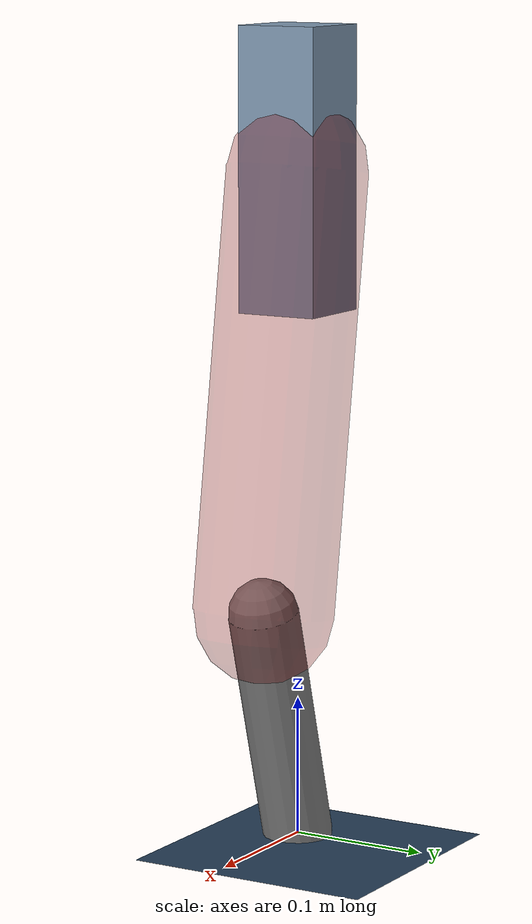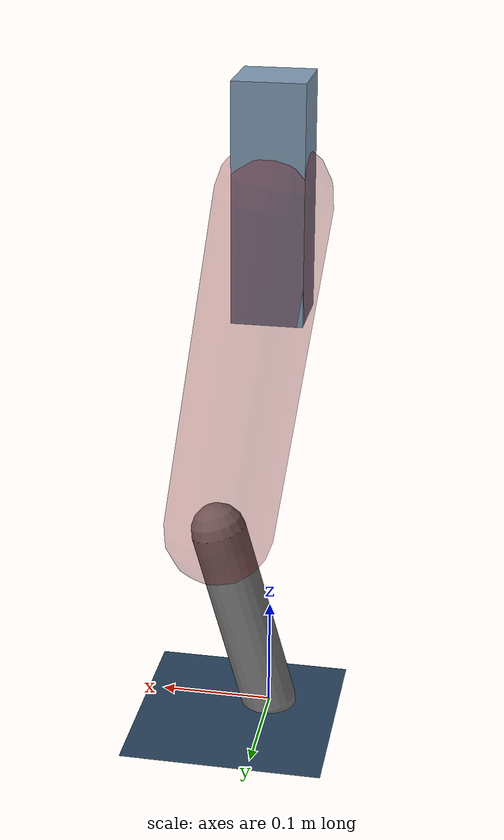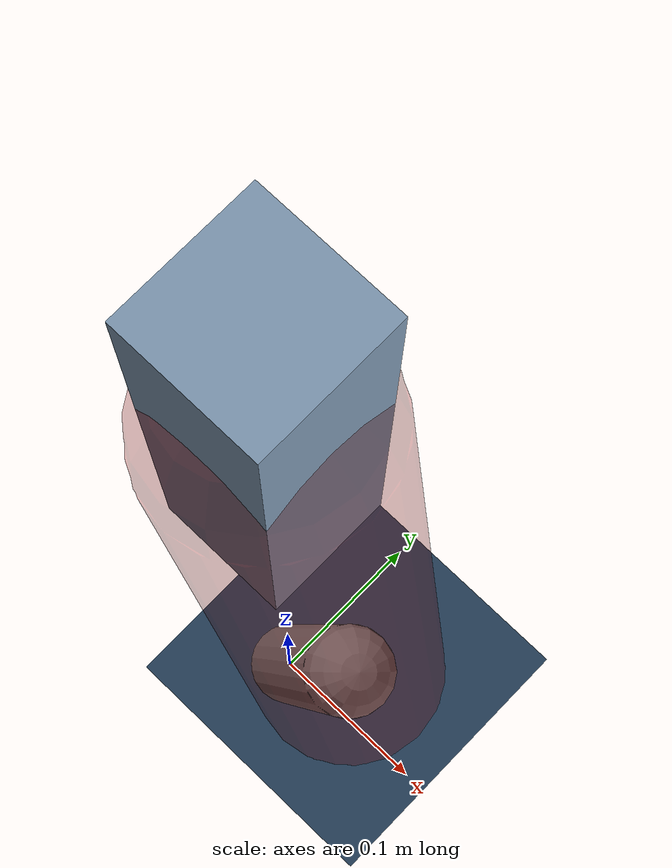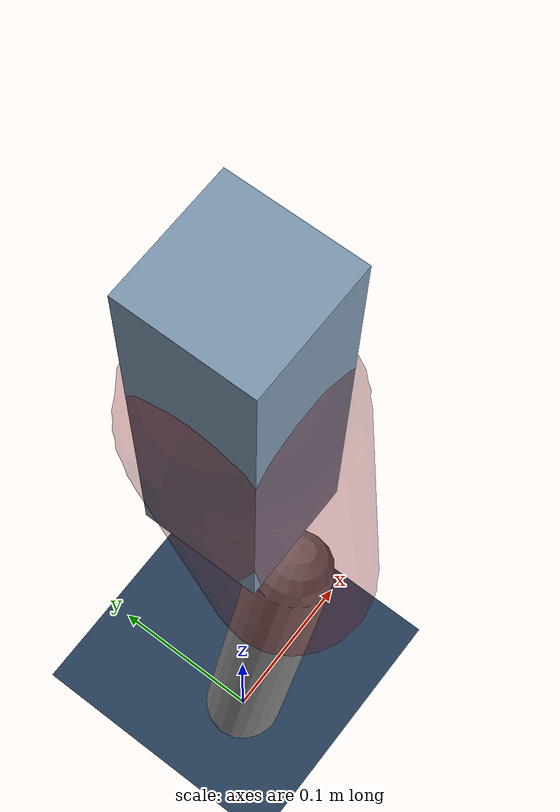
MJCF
<mujoco model="Hopper2D">
	<compiler inertiafromgeom="true" angle="radian" />
	<option timestep="0.001" integrator="implicit" cone="elliptic" solver="Newton" tolerance="1e-10" />

	<default>
		<geom contype="1" conaffinity="1" condim="3" friction="2 0.005 0.0001" solref="0.005 1" />
		<joint limited="true" damping="0.1" />
	</default>

	<asset>
		<texture name="skybox" type="skybox" builtin="gradient" rgb1=".4 .6 .8" rgb2="0 0 0" width="800" height="800" />
		<texture name="grid" type="2d" builtin="checker" rgb1=".1 .2 .3" rgb2=".2 .3 .4" width="300" height="300" mark="edge" markrgb=".2 .3 .4" />
		<material name="ground" texture="grid" texrepeat="1 1" texuniform="true" reflectance="0.1" />
		<material name="leg" rgba="0.5 0.6 0.7 1" />
	</asset>

	<worldbody>

		<geom name="floor" type="plane" size="5 5 0.25" material="ground" />

		<light directional="false" diffuse="0.8 0.8 0.8" specular="0.3 0.3 0.3" pos="0 0 2" dir="0 0 -1" />
		<light mode="targetbodycom" target="base" directional="false" diffuse="0.8 0.8 0.8" specular="0.3 0.3 0.3" pos="0 0 2" dir="0 0 -1" />

		<camera name="fixed" pos="0 -2 1" xyaxes="1 0 0 0 0 1" />
		<camera name="tracking" mode="trackcom" pos="0 -3 1" />

		<body name="root" pos="0 0 0.47935992597807153">
			<joint name="slide_x" type="slide" axis="1 0 0" range="-100 100" />
			<joint name="slide_z" type="slide" axis="0 0 1" range="0 10" />

			<body name="base" pos="0 0 0">
				<geom name="torso" type="box" size="0.03 0.03 0.1" mass="2.199" material="leg" />

				<body name="link1" pos="0 0 0" euler="0 1.4187002608706987 0">
					<joint type="hinge" axis="0 -1 0" pos="0 0 0" name="hinge1" limited="true" range="-3.14 3.14" stiffness="0" damping="0.1" />
					<geom name="thigh" type="capsule" fromto="0 0 0 0.3118085747776358 0 0" size="0.05" rgba="0.5 0 0 0.3" mass="1.0207831518996167" />

					<body name="link2" pos="0.3118085747776358 0 0" euler="0 0.42141644832075753 0">
						<joint type="hinge" axis="0 -1 0" pos="0 0 0" name="hinge2" limited="true" range="-3.14 3.14" stiffness="0" damping="0.1" />
						<geom name="shank" type="capsule" fromto="0 0 0 0.17755135120043572 0 0" size="0.025" mass="0.38179621608039216" />

					</body>
				</body>
			</body>
		</body>
	</worldbody>

	<actuator>
		<motor name="torque1" joint="hinge1" ctrlrange="-60.20287276944941 60.20287276944941" ctrllimited="true" gear="1" />
		<motor name="torque2" joint="hinge2" ctrlrange="-85.61732031849854 85.61732031849854" ctrllimited="true" gear="1" />
	</actuator>
</mujoco>
